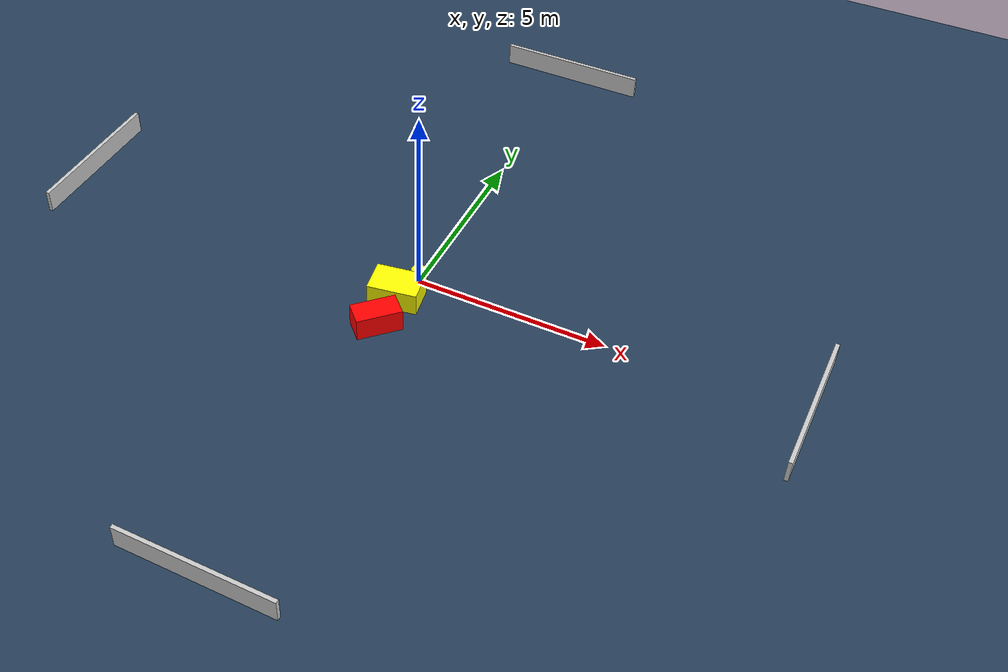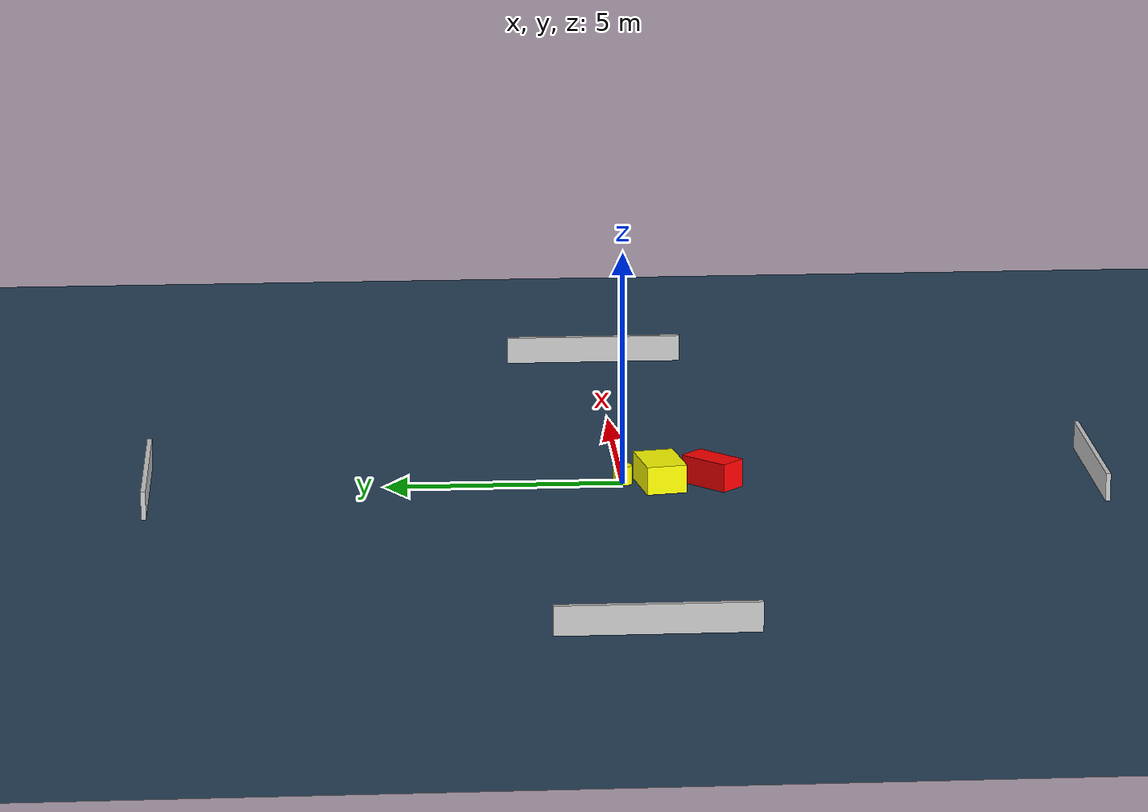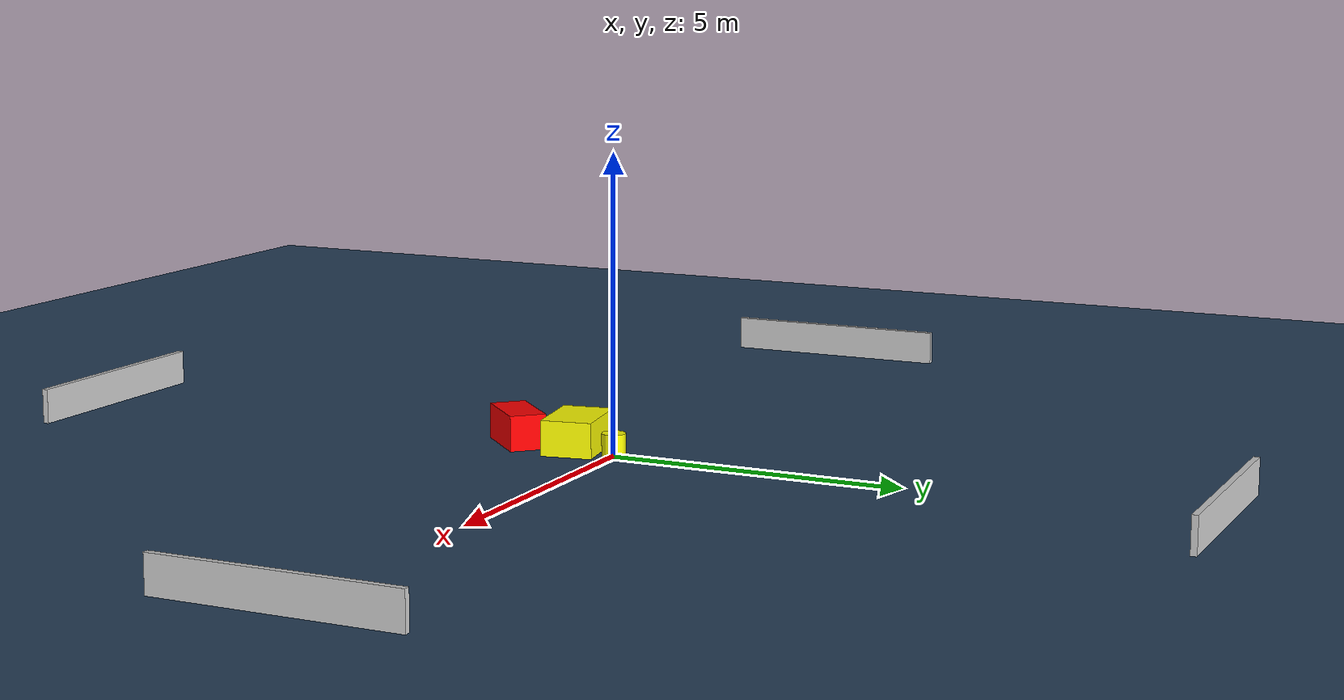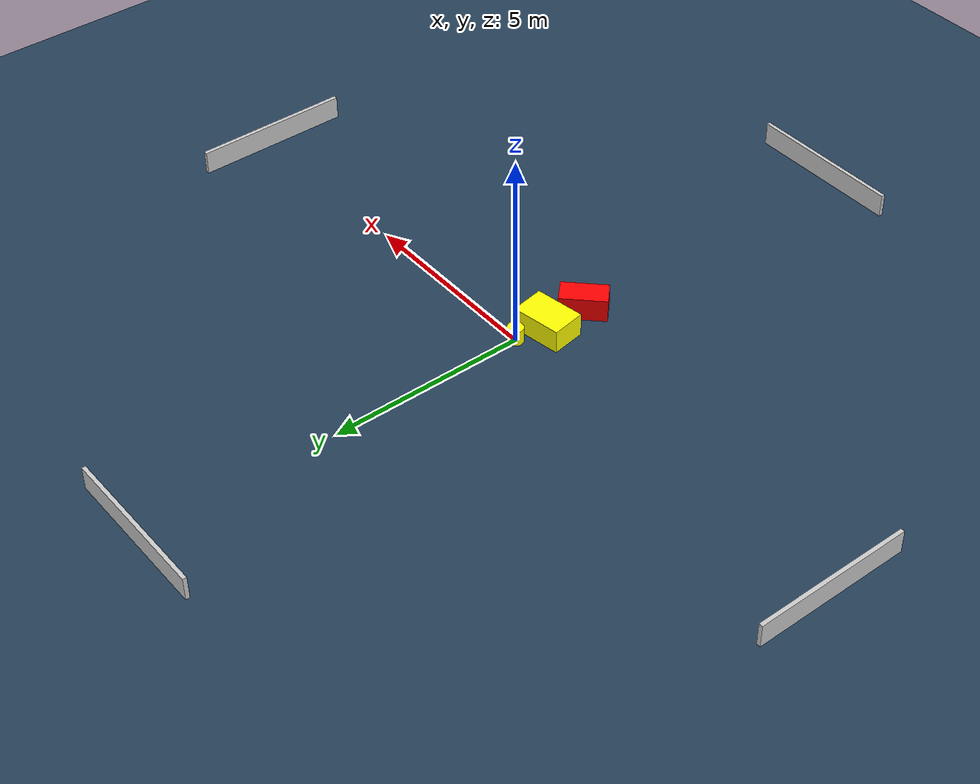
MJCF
<?xml version="1.0" ?>
<mujoco model="generated_environment">
  <option timestep="0.01" integrator="RK4" cone="elliptic"/>
  <default>
    <geom density="1"/>
  </default>
  <asset>
    <texture builtin="gradient" height="3072" name="skybox" rgb1="0.3 0.5 0.7" rgb2="0 0 0" type="skybox" width="512"/>
    <texture builtin="checker" height="300" name="groundplane" rgb1="0.2 0.3 0.4" rgb2="0.1 0.2 0.3" type="2d" width="300"/>
    <material name="groundplane" reflectance="0.2" texrepeat="5 5" texture="groundplane"/>
  </asset>
  <worldbody>
    <light dir="0 0 -1" directional="true" pos="0 0 1.5"/>
    <geom condim="3" friction="0.5 0.005 0.001" material="groundplane" name="floor" pos="0 0 0" size="0 0 0.05" type="plane"/>
    <body name="walls">
      <geom name="wall_1" condim="4" pos="-10.0 0.0 0.3" rgba="0.800000011920929 0.800000011920929 0.800000011920929 1.0" size="0.05 2.0 0.3" type="box"/>
      <geom name="wall_2" condim="4" pos="10.0 0.0 0.3" rgba="0.800000011920929 0.800000011920929 0.800000011920929 1.0" size="0.05 2.0 0.3" type="box"/>
      <geom name="wall_3" condim="4" pos="0.0 -10.0 0.3" rgba="0.800000011920929 0.800000011920929 0.800000011920929 1.0" size="2.0 0.05 0.3" type="box"/>
      <geom name="wall_4" condim="4" pos="0.0 10.0 0.3" rgba="0.800000011920929 0.800000011920929 0.800000011920929 1.0" size="2.0 0.05 0.3" type="box"/>
    </body>
    <body name="robot">
      <joint name="joint_x" type="slide" pos="0 0 0" axis="1 0 0"/>
      <joint name="joint_y" type="slide" pos="0 0 0" axis="0 1 0"/>
      <geom name="robot" type="cylinder" pos="0.0 0.0 0.2" size="0.2 0.2 0.0" mass="5.0" friction="1.0 0.005 0.0001" condim="4" rgba="1.0 1.0 0.0 1.0"/>
    </body>
    <body name="obstacle_1_movable">
      <geom name="obstacle_1_movable" condim="4" pos="-0.2174253947104112 -0.7745794697692334 0.3" euler="0 0 9.415496935302636" friction="0.0 0.005 0.001" rgba="1.0 1.0 0.0 1.0" size="0.6365103824185443 0.430644208329009 0.3" type="box" mass="0.1"/>
      <joint type="free"/>
    </body>
    <body name="obstacle_2_static">
      <geom name="obstacle_2_static" condim="4" pos="-0.19797910363134485 -1.8824509954246622 0.3" euler="0 0 135.05510927601858" friction="0.0 0.005 0.001" rgba="1.0 0.0 0.0 1.0" size="0.30772760180815395 0.579961720959288 0.3" type="box"/>
    </body>
  </worldbody>
  <actuator>
    <motor name="actuator_x" joint="joint_x" gear="1" ctrlrange="-1 1"/>
    <motor name="actuator_y" joint="joint_y" gear="1" ctrlrange="-1 1"/>
  </actuator>
</mujoco>
